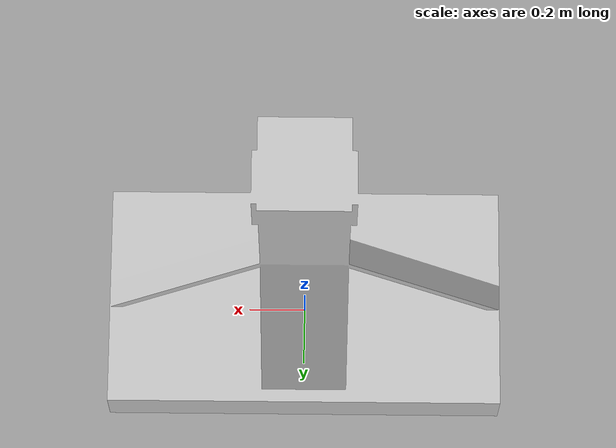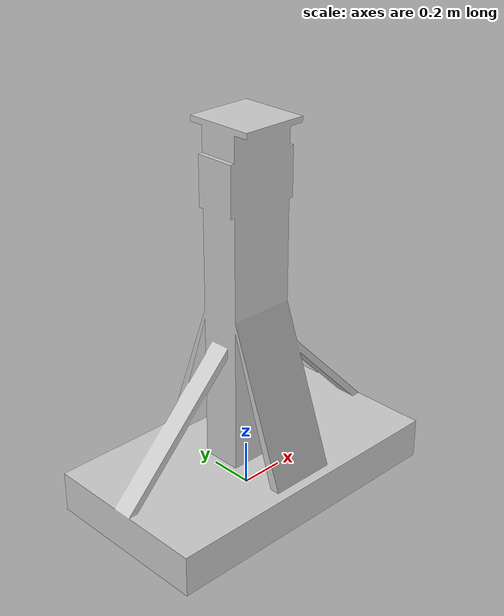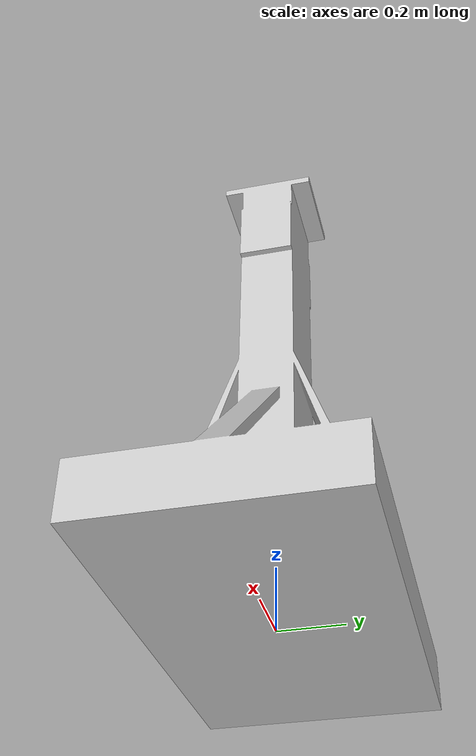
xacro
<?xml version="1.0"?>
<robot xmlns:xacro="http://www.ros.org/wiki/xacro" name="robot_trunk">

	<!-- Used for fixing robot to Gazebo 'base_link' -->
	<link name="world"/>

	<joint name="world_fixed" type="fixed">
		<parent link="world"/>
		<child link="trunk_link"/>
	</joint>

	<!-- define platform trunk -->
	<link name="trunk_link">
		<visual>
			<origin xyz="0 0 0" rpy="${pi/2.0} 0 0"/>
			<geometry>
				<mesh filename="package://trunk_description/meshes/trunk.stl"/>
			</geometry>
			<material name="Kuka/LightGrey"/>
		</visual>
		<collision>
			<origin xyz="0 0 0" rpy="${pi/2.0} 0 0"/>
			<geometry>
				<mesh filename="package://trunk_description/meshes/trunk.stl"/>
			</geometry>
		</collision>
	</link>

</robot>
